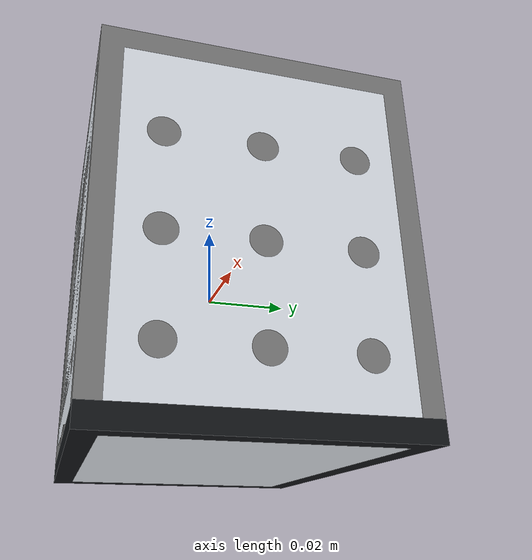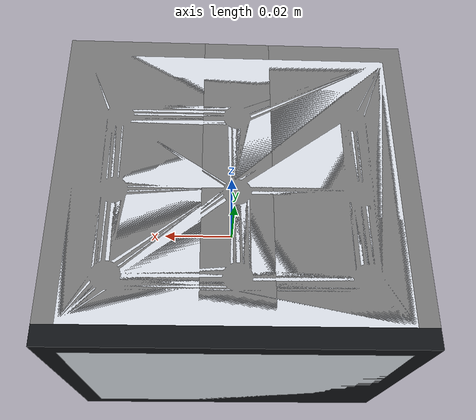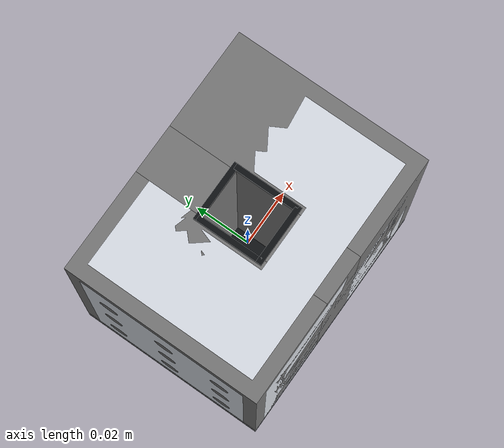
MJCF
<mujoco model="play2perfect_fork_rack">
  <asset>
    <mesh name="rack_visual" file="meshes/c532f465cd9ec1678d9b.obj" />
  </asset>
  <worldbody>
    <body>
      <body name="object">
        <!-- A dark recessed floor makes the aperture legible from the wrist
             camera without changing any collision geometry. -->
        <geom name="base" type="box" pos="0 0 -0.04" size="0.045 0.035 0.0025" group="0" rgba="0.07 0.08 0.09 1" friction="0.5 0.001 0.00001" />
        <geom name="left" type="box" pos="-0.026858 0 0.0025" size="0.0181415 0.035 0.04" group="0" rgba="0.47 0.47 0.47 1" friction="0.5 0.001 0.00001" />
        <geom name="right" type="box" pos="0.026858 0 0.0025" size="0.0181415 0.035 0.04" group="0" rgba="0.47 0.47 0.47 1" friction="0.5 0.001 0.00001" />
        <geom name="front" type="box" pos="0 0.022673 0.0025" size="0.008717 0.012327 0.04" group="0" rgba="0.47 0.47 0.47 1" friction="0.5 0.001 0.00001" />
        <geom name="back" type="box" pos="0 -0.022673 0.0025" size="0.008717 0.012327 0.04" group="0" rgba="0.47 0.47 0.47 1" friction="0.5 0.001 0.00001" />
        <geom name="slot_rim_left" type="box" pos="-0.0097 0 0.043" size="0.001 0.0114 0.00045" group="1" contype="0" conaffinity="0" mass="1e-8" rgba="0.06 0.07 0.08 1" />
        <geom name="slot_rim_right" type="box" pos="0.0097 0 0.043" size="0.001 0.0114 0.00045" group="1" contype="0" conaffinity="0" mass="1e-8" rgba="0.06 0.07 0.08 1" />
        <geom name="slot_rim_front" type="box" pos="0 0.0114 0.043" size="0.0107 0.001 0.00045" group="1" contype="0" conaffinity="0" mass="1e-8" rgba="0.06 0.07 0.08 1" />
        <geom name="slot_rim_back" type="box" pos="0 -0.0114 0.043" size="0.0107 0.001 0.00045" group="1" contype="0" conaffinity="0" mass="1e-8" rgba="0.06 0.07 0.08 1" />
        <geom name="visual" type="mesh" mesh="rack_visual" group="1" contype="0" conaffinity="0" mass="1e-8" rgba="0.86 0.88 0.91 1" />
        <site name="slot_site" pos="0 0 0.04" size="0.002" rgba="0 1 0 0" />
      </body>
      <site name="bottom_site" pos="0 0 -0.0425" size="0.002" rgba="0 0 0 0" />
      <site name="top_site" pos="0 0 0.0425" size="0.002" rgba="0 0 0 0" />
      <site name="horizontal_radius_site" pos="0.045 0.035 0" size="0.002" rgba="0 0 0 0" />
    </body>
  </worldbody>
</mujoco>
